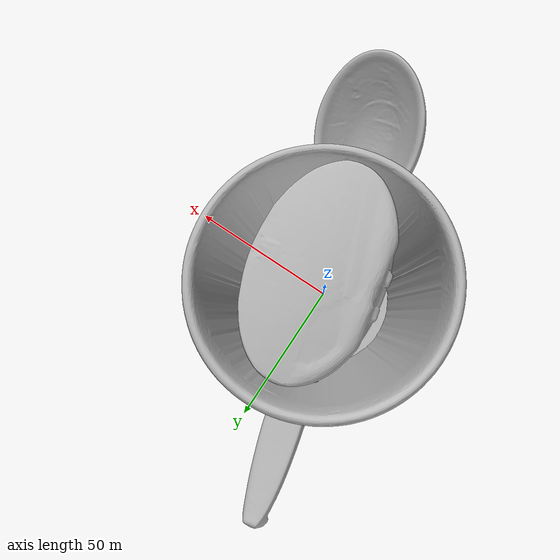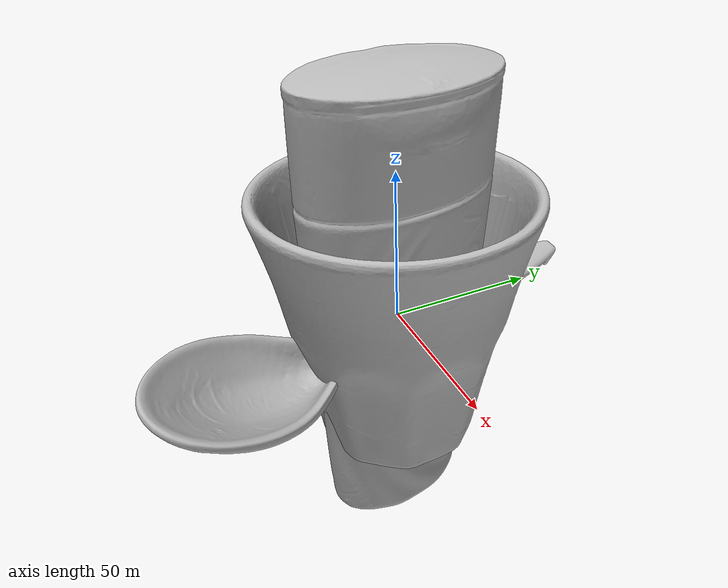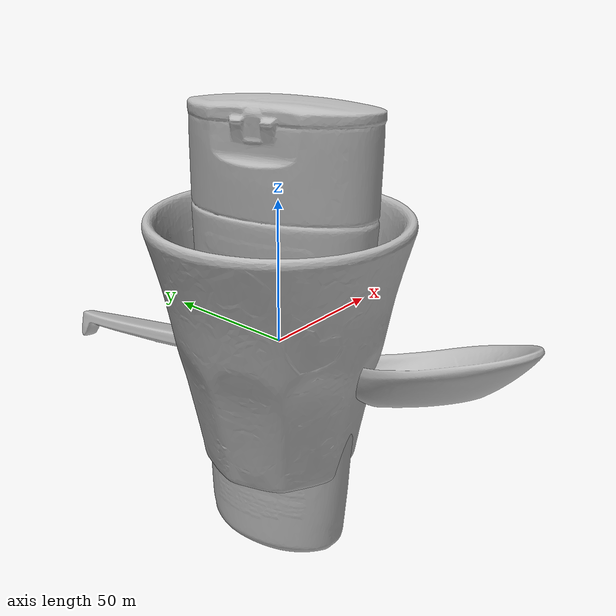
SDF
<sdf version="1.4">
 <world name="default">
  <light name="light1" type="point">
   <pose>0 0 1 0 0 0</pose>
   <diffuse>3 3 3 1</diffuse>
   <specular>3 3 3 1</specular>
  </light>
  <light name="light2" type="point">
   <pose>0 0.5 2 0 0 0</pose>
   <diffuse>1 1 1 1</diffuse>
   <specular>1 1 1 1</specular>
  </light>
  <light name="light3" type="point">
   <pose>0 0.5 2 0 0 0</pose>
   <diffuse>3 3 3 1</diffuse>
   <specular>3 3 3 1</specular>
  </light>
  <scene><ambient>0.7 0.7 0.7</ambient></scene>
  <model name="bottle1">
   <link name="link_bottle1">
    <collision name="default">
     <geometry>
      <mesh><uri>model://conditioner/collision_meshes/collision.obj</uri><scale>1.0 1.0 1.0</scale></mesh>
     </geometry>
     <surface>
      <friction><ode><mu>0.5</mu><mu2>0.5</mu2></ode></friction>
      <contact><ode><max_vel>0</max_vel><min_depth>0.0001</min_depth><kp>1e8</kp></ode></contact>
     </surface>
    </collision>
    <visual name="default">
     <geometry>
      <mesh><uri>model://conditioner/visual_meshes/visual.dae</uri><scale>1.0 1.0 1.0</scale></mesh>
     </geometry>
    </visual>
    <inertial>
     <mass>0.31316134333610535</mass>
     <pose>-0.00055994390277192 -0.0001729748910292983 0.004359682556241751 -0.005038373535624127 0.01530604069317056 0.015072338587352078</pose>
     <inertia>
      <ixx>0.0006812382</ixx>
      <iyy>0.000729753</iyy>
      <izz>0.000105037434</izz>
      <ixy>0</ixy>
      <ixz>0</ixz>
      <iyz>0</iyz>
     </inertia>
    </inertial>
   </link>
   <pose>-0.07501213252544403 0.3650355339050293 0.08122973144054413 0.03689247287944334 -0.015660639915412108 1.757239445227108</pose>
  </model>
  <model name="bottle2">
   <link name="link_bottle2">
    <collision name="default">
     <geometry>
      <mesh><uri>model://pigeon/collision_meshes/collision.obj</uri><scale>1.0 1.0 1.0</scale></mesh>
     </geometry>
     <surface>
      <friction><ode><mu>0.5</mu><mu2>0.5</mu2></ode></friction>
      <contact><ode><max_vel>0</max_vel><min_depth>0.0001</min_depth><kp>1e8</kp></ode></contact>
     </surface>
    </collision>
    <visual name="default">
     <geometry><mesh><uri>model://pigeon/visual_meshes/visual.dae</uri><scale>1.0 1.0 1.0</scale></mesh></geometry>
    </visual>
    <inertial>
     <mass>0.6510184407234192</mass>
     <pose>-9.675473847892135e-05 -0.00019276776583865285 -0.01593620888888836 -0.011704407543161608 -0.0012978192378484078 -0.04198827283679603</pose>
     <inertia>
      <ixx>0.0016273881</ixx>
      <iyy>0.0017372583</iyy>
      <izz>0.00033475916</izz>
      <ixy>0</ixy>
      <ixz>0</ixz>
      <iyz>0</iyz>
     </inertia>
    </inertial>
   </link>
   <pose>0.25839343667030334 -0.17199094593524933 0.09864483028650284 2.3766596295087057e-05 3.192542559201883e-06 1.2910700222840719</pose>
  </model>
  <model name="silverware1">
   <link name="link_silverware1">
    <collision name="default">
     <geometry>
      <mesh><uri>model://doraemon_spoon/collision_meshes/collision.obj</uri><scale>1.0 1.0 1.0</scale></mesh>
     </geometry>
     <surface>
      <friction><ode><mu>0.5</mu><mu2>0.5</mu2></ode></friction>
      <contact><ode><max_vel>0</max_vel><min_depth>0.0001</min_depth><kp>1e8</kp></ode></contact>
     </surface>
    </collision>
    <visual name="default">
     <geometry>
      <mesh><uri>model://doraemon_spoon/visual_meshes/visual.dae</uri><scale>1.0 1.0 1.0</scale></mesh>
     </geometry>
    </visual>
    <inertial>
     <mass>0.020366016775369644</mass>
     <pose>-0.022165074944496155 -0.0006374584045261145 -0.0033325462136417627 -0.009147200915366215 0.0738041822243956 -0.014123826891092987</pose>
     <inertia>
      <ixx>1.5952605e-06</ixx>
      <iyy>4.5307766e-05</iyy>
      <izz>4.6078047e-05</izz>
      <ixy>0</ixy>
      <ixz>0</ixz>
      <iyz>0</iyz>
     </inertia>
    </inertial>
   </link>
   <pose>0.014771509915590286 0.07381400465965271 0.014739337377250195 0.2787996976092162 -0.01033431644018836 1.85338226202896</pose>
  </model>
  <model name="stationery1">
   <link name="link_stationery1">
    <collision name="default">
     <geometry>
      <mesh><uri>model://correction_fuid/collision_meshes/collision.obj</uri><scale>1.0 1.0 1.0</scale></mesh>
     </geometry>
     <surface>
      <friction><ode><mu>0.5</mu><mu2>0.5</mu2></ode></friction>
      <contact><ode><max_vel>0</max_vel><min_depth>0.0001</min_depth><kp>1e8</kp></ode></contact>
     </surface>
    </collision>
    <visual name="default">
     <geometry>
      <mesh><uri>model://correction_fuid/visual_meshes/visual.dae</uri><scale>1.0 1.0 1.0</scale></mesh>
     </geometry>
    </visual>
    <inertial>
     <mass>0.02487199380993843</mass>
     <pose>-0.00012557733862195164 -0.0009722901741042733 -0.001618212671019137 -0.010846607936808557 0.019488255039962172 -0.015992454917835536</pose>
     <inertia>
      <ixx>2.4088951e-05</ixx>
      <iyy>1.4578937e-06</iyy>
      <izz>2.4715917e-05</izz>
      <ixy>0</ixy>
      <ixz>0</ixz>
      <iyz>0</iyz>
     </inertia>
    </inertial>
   </link>
   <pose>-0.0013439885806292295 -0.3450234532356262 0.009632832370698452 -0.0017271528638933573 -0.056168410899232336 -0.7132889400526055</pose>
  </model>
  <model name="bowl1">
   <link name="link_bowl1">
    <collision name="default">
     <geometry>
      <mesh><uri>model://doraemon_bowl/collision_meshes/collision.obj</uri><scale>1.0 1.0 1.0</scale></mesh>
     </geometry>
     <surface>
      <friction><ode><mu>0.5</mu><mu2>0.5</mu2></ode></friction>
      <contact><ode><max_vel>0</max_vel><min_depth>0.0001</min_depth><kp>1e8</kp></ode></contact>
     </surface>
    </collision>
    <visual name="default">
     <geometry>
      <mesh><uri>model://doraemon_bowl/visual_meshes/visual.dae</uri><scale>1.0 1.0 1.0</scale></mesh>
     </geometry>
    </visual>
    <inertial>
     <mass>0.06713785231113434</mass>
     <pose>-0.014629548415541649 0.000485710974317044 -0.0020864871330559254 -0.005093962398800634 -0.10568405274446478 -0.026426476578293747</pose>
     <inertia>
      <ixx>9.309732e-05</ixx>
      <iyy>0.00012251528</iyy>
      <izz>0.00018024874</izz>
      <ixy>0</ixy>
      <ixz>0</ixz>
      <iyz>0</iyz>
     </inertia>
    </inertial>
   </link>
   <pose>0.06413598358631134 0.16393952071666718 0.02589222602546215 0.008568797581140621 0.008123188043096419 -1.0869311678229487</pose>
  </model>
  <model name="cup1">
   <link name="link_cup1">
    <collision name="default">
     <geometry>
      <mesh><uri>model://hello_kitty_cup/collision_meshes/collision.obj</uri><scale>1.0 1.0 1.0</scale></mesh>
     </geometry>
     <surface>
      <friction><ode><mu>0.5</mu><mu2>0.5</mu2></ode></friction>
      <contact><ode><max_vel>0</max_vel><min_depth>0.0001</min_depth><kp>1e8</kp></ode></contact>
     </surface>
    </collision>
    <visual name="default">
     <geometry>
      <mesh><uri>model://hello_kitty_cup/visual_meshes/visual.dae</uri><scale>1.0 1.0 1.0</scale></mesh>
     </geometry>
    </visual>
    <inertial>
     <mass>0.13384777307510376</mass>
     <pose>0.00027251095161773264 0.00027950218645855784 0.0030449770856648684 0.057791450277227645 0.007964955326408191 -0.02045228086216793</pose>
     <inertia>
      <ixx>0.0001843247</ixx>
      <iyy>0.0001863793</iyy>
      <izz>0.00015541737</izz>
      <ixy>0</ixy>
      <ixz>0</ixz>
      <iyz>0</iyz>
     </inertia>
    </inertial>
   </link>
   <pose>0.0539005808532238 -0.21149839460849762 0.04621398448944092 -0.005710894537905742 0.010784104345026413 -0.7437268316612585</pose>
  </model>
  <model name="plate1">
   <link name="link_plate1">
    <collision name="default">
     <geometry>
      <mesh><uri>model://hello_kitty_plate/collision_meshes/collision.obj</uri><scale>1.0 1.0 1.0</scale></mesh>
     </geometry>
     <surface>
      <friction><ode><mu>0.5</mu><mu2>0.5</mu2></ode></friction>
      <contact><ode><max_vel>0</max_vel><min_depth>0.0001</min_depth><kp>1e8</kp></ode></contact>
     </surface>
    </collision>
    <visual name="default">
     <geometry>
      <mesh><uri>model://hello_kitty_plate/visual_meshes/visual.dae</uri><scale>1.0 1.0 1.0</scale></mesh>
     </geometry>
    </visual>
    <inertial>
     <mass>0.0821625292301178</mass>
     <pose>0.0073142931796610355 0.00028937371098436415 -0.0027947186026722193 -0.0001043184795654353 -0.007054440405958318 -0.014449014916312054</pose>
     <inertia>
      <ixx>0.00015843393</ixx>
      <iyy>0.00029901267</iyy>
      <izz>0.00045402072</izz>
      <ixy>0</ixy>
      <ixz>0</ixz>
      <iyz>0</iyz>
     </inertia>
    </inertial>
   </link>
   <pose>0.01845492236316204 0.14226509630680084 0.05915750935673714 0.007553953488803863 0.010078461846769924 2.659174166556085</pose>
  </model>
  <physics type="ode">
   <max_contacts>50</max_contacts>
   <ode>
    <solver><type>quick</type><iters>75</iters></solver>
    <constraints>
     <contact_max_correcting_vel>0</contact_max_correcting_vel>
     <contact_surface_layer>0</contact_surface_layer>
    </constraints>
   </ode>
  </physics>
 </world>
</sdf>
